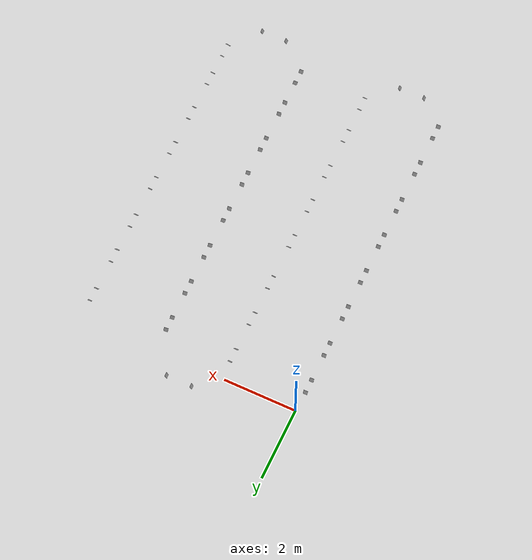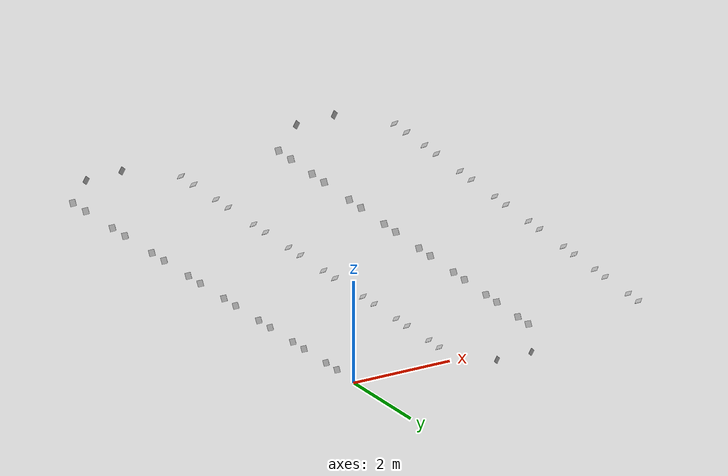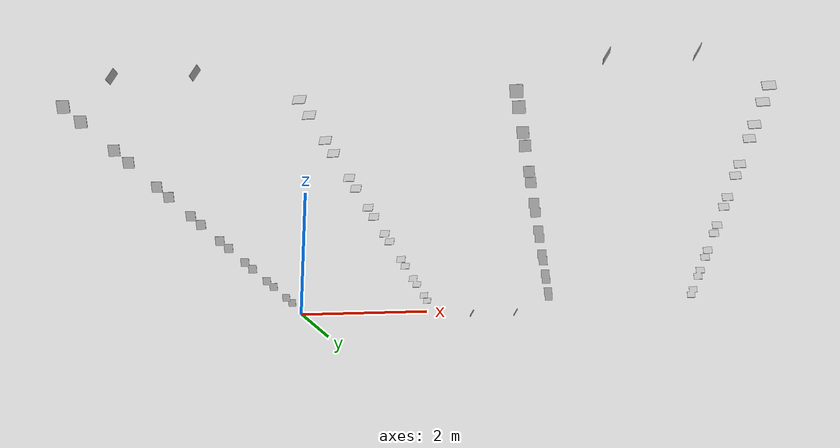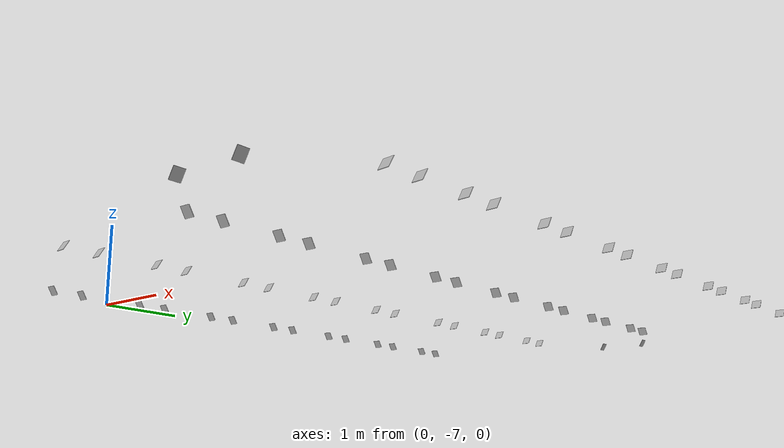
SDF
<sdf version='1.6'>
  <model name='follow_marker'>
  <static>true</static>
    <link name='base_link'>
      <visual name='base_link_visual'>
        <pose frame=''>0 0 0 0 0 0</pose>
        <geometry>
          <mesh>
            <scale>1 1 1</scale>
            <uri>model://follow_marker/follow.dae</uri>
          </mesh>
        </geometry>
      </visual>
    </link>
  </model>
</sdf>
